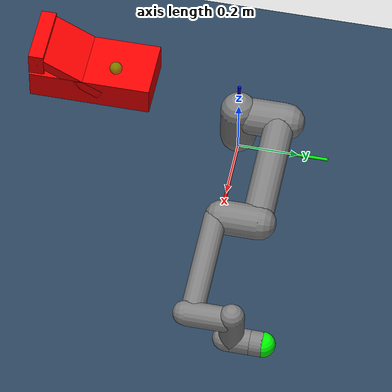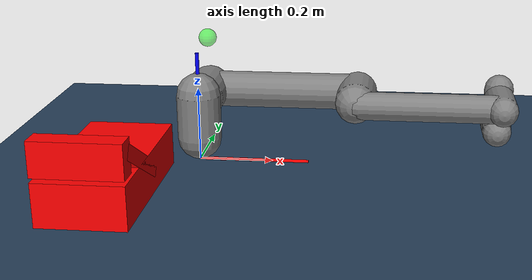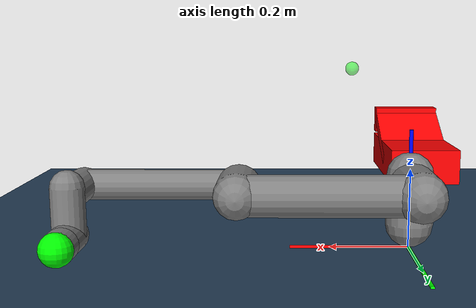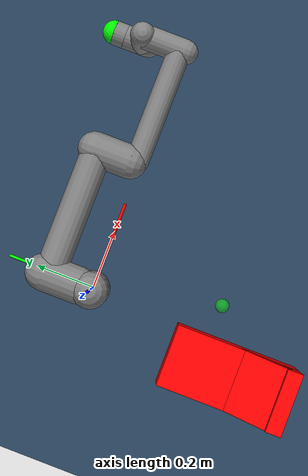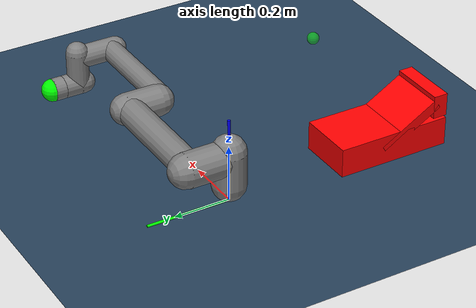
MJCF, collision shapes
<mujoco model="ur5e scene">
  <include file="ur5e_2.xml"/>

  <statistic center="0.3 0 0.4" extent="0.8"/>

  <visual>
    <headlight diffuse="0.6 0.6 0.6" ambient="0.1 0.1 0.1" specular="0 0 0"/>
    <rgba haze="0.15 0.25 0.35 1"/>
    <global azimuth="120" elevation="-20"/>
  </visual>

  <asset>
    <texture type="skybox" builtin="gradient" rgb1="0.3 0.5 0.7" rgb2="0 0 0" width="512" height="3072"/>
    <texture type="2d" name="groundplane" builtin="checker" mark="edge" rgb1="0.2 0.3 0.4" rgb2="0.1 0.2 0.3"
      markrgb="0.8 0.8 0.8" width="300" height="300"/>
    <material name="groundplane" texture="groundplane" texuniform="true" texrepeat="5 5" reflectance="0.2"/>
  </asset>

  <worldbody>
    <light pos="0 0 1.5" dir="0 0 -1" directional="true"/>
    <geom name="floor" size="0 0 0.05" type="plane" material="groundplane"/>

    <body name="gangti" pos=" 0 0 0.15" euler=" 0 0 0">

      <geom name="red_pingmian_geom"
            pos="-0.1 -0.5 0"
            type="box"
            size="0.1 0.2 0.05"
            rgba="1 0 0 1"
            mass="1.0"
            contype="1"
            conaffinity="1"
      />

      <geom name="red_xiemian_geom"
            pos="-0.1 -0.564433 0.05387"
            type="box"
            size="0.1 0.11547 0.017735"
            euler="-0.524 0 0"
            rgba="1 0 0 1"
            mass="1.0"
            contype="1"
            conaffinity="1"
      />
      <geom name="red_pingmian_2_geom"
            pos="-0.1 -0.675 0.1"
            type="box"
            size="0.1 0.025 0.04"
            rgba="1 0 0 1"
            mass="1.0"
            contype="1"
            conaffinity="1"
      />
    </body>
    <body name="target" pos=" 0.11186259 -0.38057544  0.43424804">
      <geom size="0.02" rgba="0 1 0 0.5" contype="0" conaffinity="0"/>
    </body>
  </worldbody>
</mujoco>

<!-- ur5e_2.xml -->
<mujoco model="ur5e_2">
  <compiler angle="radian" meshdir="assets" autolimits="true"/>

  <option integrator="implicitfast" timestep="0.005"/>

  <default>
    <default class="ur5e">
      <material specular="0.5" shininess="0.25"/>
      <joint armature="0.1" damping="1.0" axis="0 1 0" range="-3.1415926 3.1415926"/>
      <general dyntype="none" biastype="affine"/>
      <default class="visual">
        <geom type="mesh" contype="0" conaffinity="0" group="2"/>
      </default>
      <default class="collision">
        <geom type="capsule" group="3"/>
        <default class="eef_collision">
          <geom type="cylinder"/>
        </default>
      </default>
      <site size="0.001" rgba="0.5 0.5 0.5 0.3" group="4"/>

    </default>
  </default>

<asset>
    <material class="ur5e" name="black" rgba="0.033 0.033 0.033 1"/>
    <material class="ur5e" name="jointgray" rgba="0.278 0.278 0.278 1"/>
    <material class="ur5e" name="linkgray" rgba="0.82 0.82 0.82 1"/>
    <material class="ur5e" name="urblue" rgba="0.49 0.678 0.8 1"/>
    <mesh file="base_0.obj"/> <mesh file="base_1.obj"/>
    <mesh file="shoulder_0.obj"/> <mesh file="shoulder_1.obj"/> <mesh file="shoulder_2.obj"/>
    <mesh file="upperarm_0.obj"/> <mesh file="upperarm_1.obj"/> <mesh file="upperarm_2.obj"/> <mesh file="upperarm_3.obj"/>
    <mesh file="forearm_0.obj"/> <mesh file="forearm_1.obj"/> <mesh file="forearm_2.obj"/> <mesh file="forearm_3.obj"/>
    <mesh file="wrist1_0.obj"/> <mesh file="wrist1_1.obj"/> <mesh file="wrist1_2.obj"/>
    <mesh file="wrist2_0.obj"/> <mesh file="wrist2_1.obj"/> <mesh file="wrist2_2.obj"/>
    <mesh file="wrist3.obj"/>
  </asset>

  <worldbody>
    <light name="spotlight" mode="targetbodycom" target="wrist_2_link" pos="0 -1 2"/>
    <body name="base" quat="1 0 0 0" childclass="ur5e">
      <inertial mass="4.0" pos="0 0 0" diaginertia="0.00443333156 0.00443333156 0.0072"/>
      <geom mesh="base_0" material="black" class="visual"/>
      <geom mesh="base_1" material="jointgray" class="visual"/>
      <body name="shoulder_link" pos="0 0 0.163">
        <inertial mass="3.7" pos="0 0 0" diaginertia="0.0102675 0.0102675 0.00666"/>
        <joint name="shoulder_pan_joint" class="ur5e" axis="0 0 1"/>
        <geom mesh="shoulder_0" material="urblue" class="visual"/>
        <geom mesh="shoulder_1" material="black" class="visual"/>
        <geom mesh="shoulder_2" material="jointgray" class="visual"/>
        <geom class="collision" size="0.06 0.06" pos="0 0 -0.04"/>
        <body name="upper_arm_link" pos="0 0.138 0" quat="1 0 1 0">
          <inertial mass="8.393" pos="0 0 0.2125" diaginertia="0.133886 0.133886 0.0151074"/>
          <joint name="shoulder_lift_joint" class="ur5e"/>
          <geom mesh="upperarm_0" material="linkgray" class="visual"/>
          <geom mesh="upperarm_1" material="black" class="visual"/>
          <geom mesh="upperarm_2" material="jointgray" class="visual"/>
          <geom mesh="upperarm_3" material="urblue" class="visual"/>
          <geom class="collision" pos="0 -0.04 0" quat="1 1 0 0" size="0.06 0.06"/>
          <geom class="collision" size="0.05 0.2" pos="0 0 0.2"/>
          <body name="forearm_link" pos="0 -0.131 0.425">
            <inertial mass="2.275" pos="0 0 0.196" diaginertia="0.0311796 0.0311796 0.004095"/>
            <joint name="elbow_joint" class="ur5e"/>
            <geom mesh="forearm_0" material="urblue" class="visual"/>
            <geom mesh="forearm_1" material="linkgray" class="visual"/>
            <geom mesh="forearm_2" material="black" class="visual"/>
            <geom mesh="forearm_3" material="jointgray" class="visual"/>
            <geom class="collision" pos="0 0.08 0" quat="1 1 0 0" size="0.055 0.06"/>
            <geom class="collision" size="0.038 0.19" pos="0 0 0.2"/>
            <body name="wrist_1_link" pos="0 0 0.392" quat="1 0 1 0">
              <inertial mass="1.219" pos="0 0.127 0" diaginertia="0.0025599 0.0025599 0.0021942"/>
              <joint name="wrist_1_joint" class="ur5e"/>
              <geom mesh="wrist1_0" material="black" class="visual"/>
              <geom mesh="wrist1_1" material="urblue" class="visual"/>
              <geom mesh="wrist1_2" material="jointgray" class="visual"/>
              <geom class="collision" pos="0 0.05 0" quat="1 1 0 0" size="0.04 0.07"/>
              <body name="wrist_2_link" pos="0 0.127 0">
                <inertial mass="1.219" pos="0 0 0.1" diaginertia="0.0025599 0.0025599 0.0021942"/>
                <joint name="wrist_2_joint" axis="0 0 1" class="ur5e"/>
                <geom mesh="wrist2_0" material="black" class="visual"/>
                <geom mesh="wrist2_1" material="urblue" class="visual"/>
                <geom mesh="wrist2_2" material="jointgray" class="visual"/>
                <geom class="collision" size="0.04 0.06" pos="0 0 0.04"/>
                <geom class="collision" pos="0 0.02 0.1" quat="1 1 0 0" size="0.04 0.04"/>
                <body name="wrist_3_link" pos="0 0 0.1">
                  <inertial mass="0.1889" pos="0 0.0771683 0" quat="1 0 0 1"
                    diaginertia="0.000132134 9.90863e-05 9.90863e-05"/>
                  <joint name="wrist_3_joint" class="ur5e"/>
                  <geom material="linkgray" mesh="wrist3" class="visual"/>
                  <geom class="eef_collision" pos="0 0.08 0" quat="1 1 0 0" size="0.04 0.02"/>
                  <site name="attachment_site" pos="0 0.1 0" quat="-1 1 0 0"/>

                  <body name="force_sensor" pos="0 0.1 0" euler="3.14 0 3.14">
                    <geom name='force_sensor_geom'
                          type="sphere"
                          mass="0.00"
                          size="0.04"
                          rgba="0 1 0 0.3"
                          contype="1"
                          conaffinity="1"
                    />
                    <site name="force_sensor_site" pos="0 0 0" quat="1 0 0 0"/>
                  </body>
                </body>
              </body>
            </body>
          </body>
        </body>
      </body>
    </body>
    <body name="world_frame" pos="0 0 0">
            <geom name="X" type="cylinder" size="0.005" fromto="0 0 0 0.3 0 0" rgba="1 0 0 1" contype="0"
                  conaffinity="0"/>
            <geom name="Y" type="cylinder" size="0.005" fromto="0 0 0 0 0.3 0" rgba="0 1 0 1" contype="0"
                  conaffinity="0"/>
            <geom name="Z" type="cylinder" size="0.005" fromto="0 0 0 0 0 0.3" rgba="0 0 1 1" contype="0"
                  conaffinity="0"/>
    </body>

  </worldbody>
  <sensor>
    <force site="force_sensor_site"/>
  </sensor>
  <actuator>
    <general class="ur5e" name="pos_shoulder_pan"  joint="shoulder_pan_joint"  gainprm="6000" biasprm="0 -6000 -600" ctrlrange="-3.14 3.14"/>
    <general class="ur5e" name="pos_shoulder_lift" joint="shoulder_lift_joint" gainprm="6000" biasprm="0 -6000 -600" ctrlrange="-3.14 3.14"/>
    <general class="ur5e" name="pos_elbow"         joint="elbow_joint"         gainprm="4000" biasprm="0 -4000 -400" ctrlrange="-3.14 3.14"/>
    <general class="ur5e" name="pos_wrist_1"       joint="wrist_1_joint"       gainprm="1000" biasprm="0 -1000 -100" ctrlrange="-3.14 3.14"/>
    <general class="ur5e" name="pos_wrist_2"       joint="wrist_2_joint"       gainprm="1000" biasprm="0 -1000 -100" ctrlrange="-3.14 3.14"/>
    <general class="ur5e" name="pos_wrist_3"       joint="wrist_3_joint"       gainprm="500" biasprm="0 -500 -50" ctrlrange="-3.14 3.14"/>

    <motor class="ur5e" name="trq_shoulder_pan"  joint="shoulder_pan_joint" ctrlrange="-150 150"/>
    <motor class="ur5e" name="trq_shoulder_lift" joint="shoulder_lift_joint" ctrlrange="-150 150"/>
    <motor class="ur5e" name="trq_elbow"         joint="elbow_joint"         ctrlrange="-150 150"/>
    <motor class="ur5e" name="trq_wrist_1"       joint="wrist_1_joint"       ctrlrange="-28 28"/>
    <motor class="ur5e" name="trq_wrist_2"       joint="wrist_2_joint"       ctrlrange="-28 28"/>
    <motor class="ur5e" name="trq_wrist_3"       joint="wrist_3_joint"       ctrlrange="-28 28"/>
  </actuator>

  <keyframe>
    <key name="home" qpos="-1.6 -1.29 1.95 -1.1 -3.14 0" ctrl="-1.6 -1.29 1.95 -1.1 -3.14 0 0 0 0 0 0 0 "/>
  </keyframe>
</mujoco>
